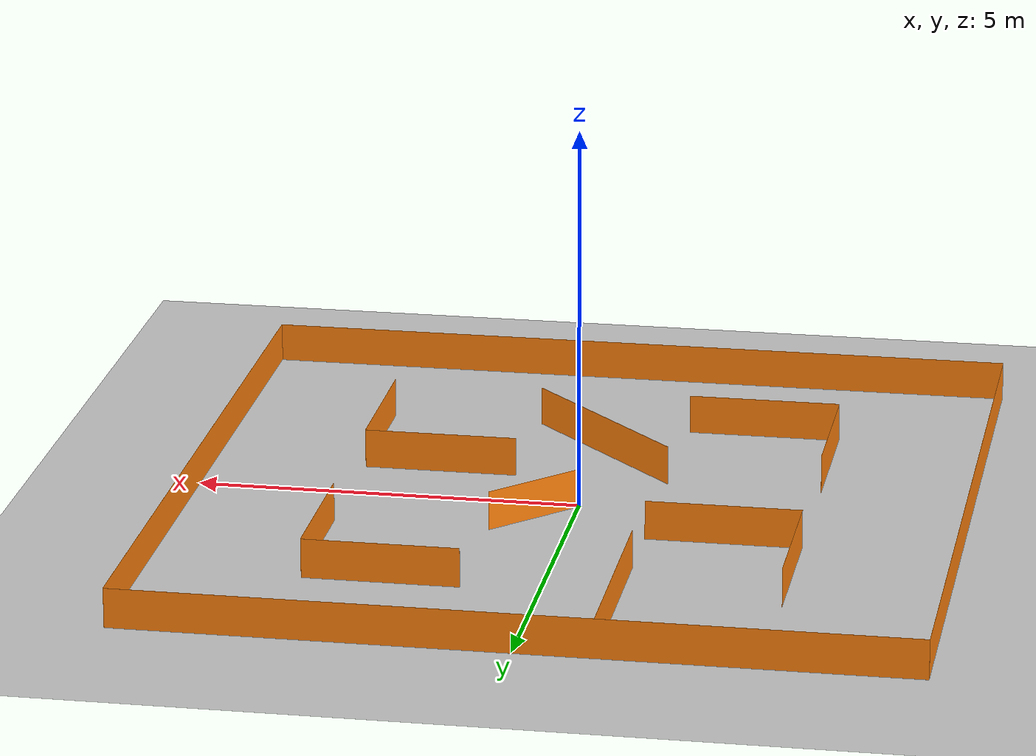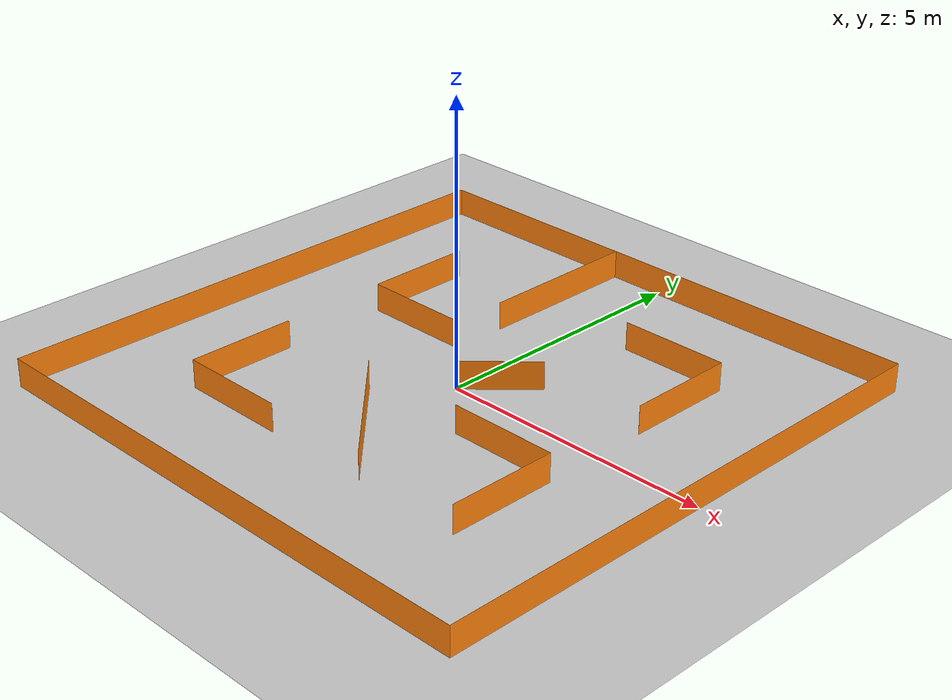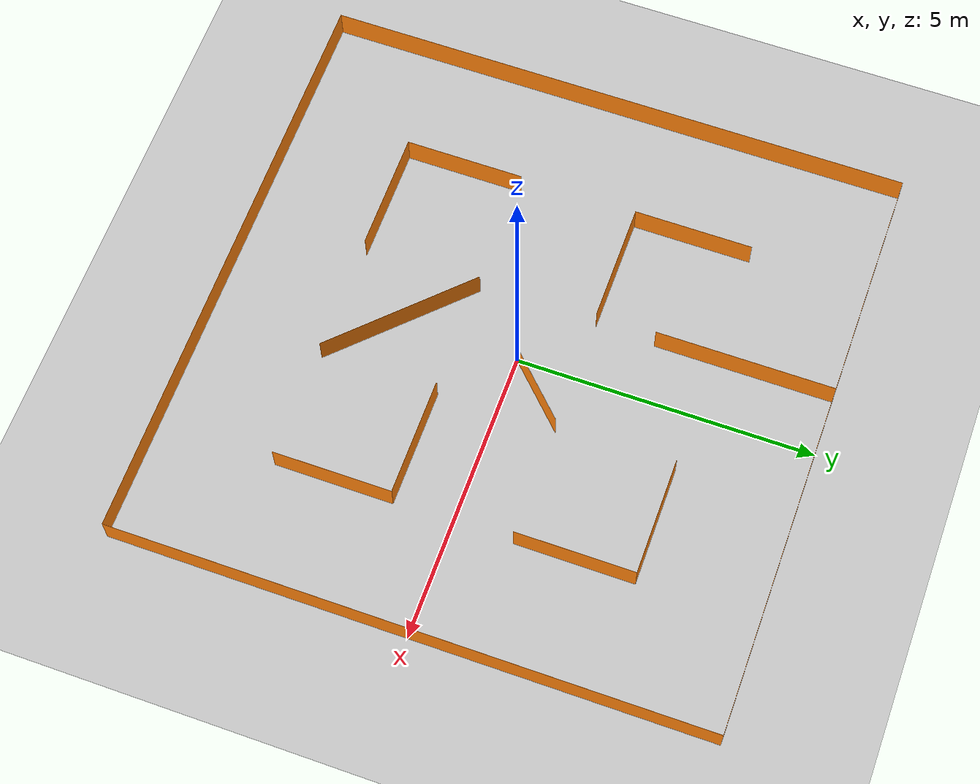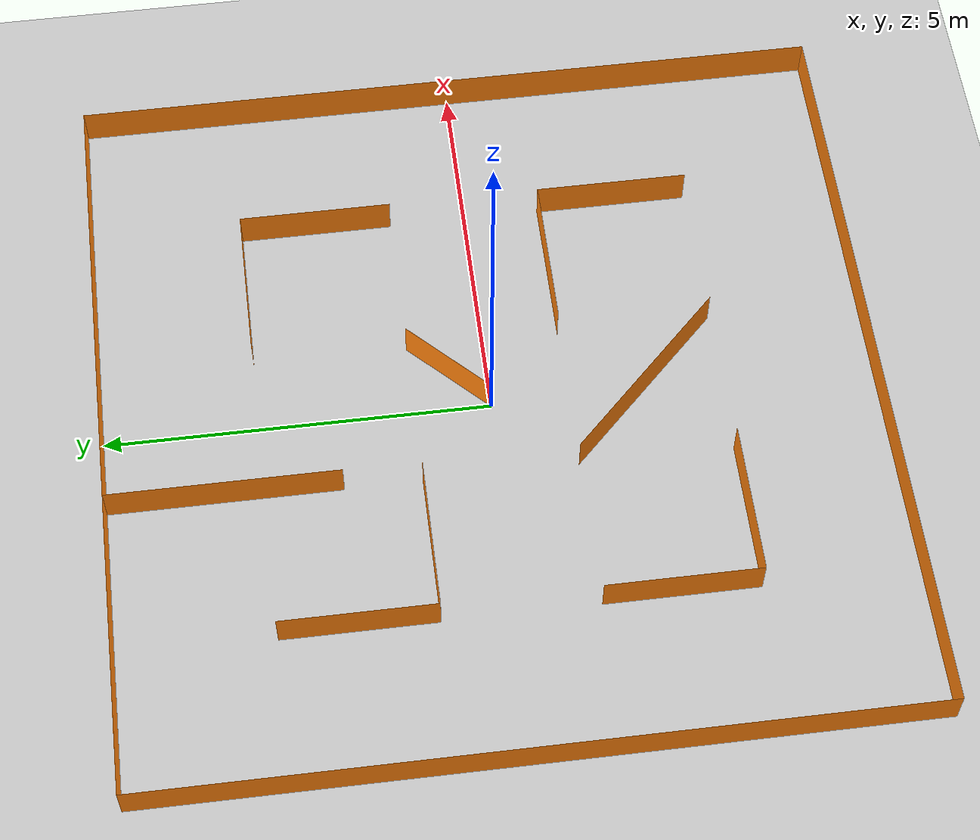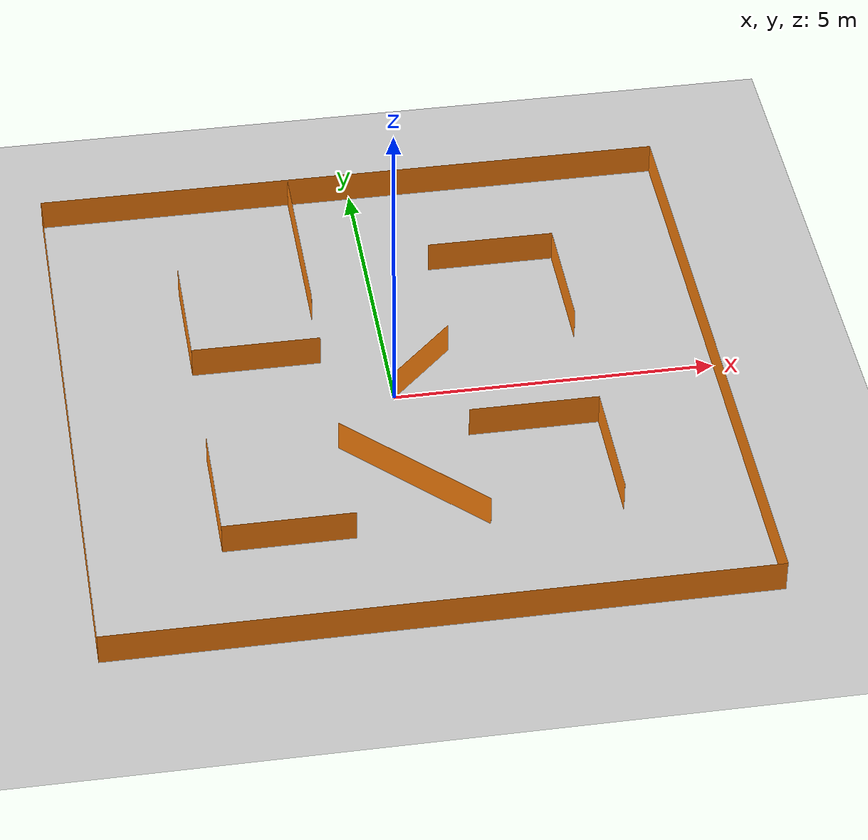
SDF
<sdf version='1.9'>
  <world name='default'>
    <include>
      <uri>https://fuel.gazebosim.org/1.0/OpenRobotics/models/Sun</uri>
    </include>

    <include>
      <uri>https://fuel.gazebosim.org/1.0/OpenRobotics/models/Ground Plane</uri>
    </include>

    <model name='wall_0'>
      <static>1</static>
      <link name='link'>
        <collision name='collision'>
          <geometry>
            <box>
              <size>10.0 0.001 1</size>
            </box>
          </geometry>
        </collision>
        <visual name='visual'>
          <geometry>
            <box>
              <size>10.0 0.001 1</size>
            </box>
          </geometry>
          <material>
            <ambient>1 0.5088 0.0468 1</ambient>
            <diffuse>1 0.5088 0.0468 1</diffuse>
            <specular>0.5 0.5 0.5 0.5</specular>
          </material>
        </visual>
      </link>
      <pose>0.0 5.0 0 0 0 3.14159265359</pose>
    </model>

    <model name='wall_1'>
      <static>1</static>
      <link name='link'>
        <collision name='collision'>
          <geometry>
            <box>
              <size>10.0 0.001 1</size>
            </box>
          </geometry>
        </collision>
        <visual name='visual'>
          <geometry>
            <box>
              <size>10.0 0.001 1</size>
            </box>
          </geometry>
          <material>
            <ambient>1 0.5088 0.0468 1</ambient>
            <diffuse>1 0.5088 0.0468 1</diffuse>
            <specular>0.5 0.5 0.5 0.5</specular>
          </material>
        </visual>
      </link>
      <pose>-5.0 0.0 0 0 0 -1.57079632679</pose>
    </model>

    <model name='wall_2'>
      <static>1</static>
      <link name='link'>
        <collision name='collision'>
          <geometry>
            <box>
              <size>10.0 0.001 1</size>
            </box>
          </geometry>
        </collision>
        <visual name='visual'>
          <geometry>
            <box>
              <size>10.0 0.001 1</size>
            </box>
          </geometry>
          <material>
            <ambient>1 0.5088 0.0468 1</ambient>
            <diffuse>1 0.5088 0.0468 1</diffuse>
            <specular>0.5 0.5 0.5 0.5</specular>
          </material>
        </visual>
      </link>
      <pose>0.0 -5.0 0 0 0 0.0</pose>
    </model>

    <model name='wall_3'>
      <static>1</static>
      <link name='link'>
        <collision name='collision'>
          <geometry>
            <box>
              <size>10.0 0.001 1</size>
            </box>
          </geometry>
        </collision>
        <visual name='visual'>
          <geometry>
            <box>
              <size>10.0 0.001 1</size>
            </box>
          </geometry>
          <material>
            <ambient>1 0.5088 0.0468 1</ambient>
            <diffuse>1 0.5088 0.0468 1</diffuse>
            <specular>0.5 0.5 0.5 0.5</specular>
          </material>
        </visual>
      </link>
      <pose>5.0 0.0 0 0 0 1.57079632679</pose>
    </model>

    <model name='wall_4'>
      <static>1</static>
      <link name='link'>
        <collision name='collision'>
          <geometry>
            <box>
              <size>2.0 0.001 1</size>
            </box>
          </geometry>
        </collision>
        <visual name='visual'>
          <geometry>
            <box>
              <size>2.0 0.001 1</size>
            </box>
          </geometry>
          <material>
            <ambient>1 0.5088 0.0468 1</ambient>
            <diffuse>1 0.5088 0.0468 1</diffuse>
            <specular>0.5 0.5 0.5 0.5</specular>
          </material>
        </visual>
      </link>
      <pose>-3.0 -2.0 0 0 0 1.57079632679</pose>
    </model>

    <model name='wall_5'>
      <static>1</static>
      <link name='link'>
        <collision name='collision'>
          <geometry>
            <box>
              <size>2.0 0.001 1</size>
            </box>
          </geometry>
        </collision>
        <visual name='visual'>
          <geometry>
            <box>
              <size>2.0 0.001 1</size>
            </box>
          </geometry>
          <material>
            <ambient>1 0.5088 0.0468 1</ambient>
            <diffuse>1 0.5088 0.0468 1</diffuse>
            <specular>0.5 0.5 0.5 0.5</specular>
          </material>
        </visual>
      </link>
      <pose>-2.0 -3.0 0 0 0 0.0</pose>
    </model>

    <model name='wall_6'>
      <static>1</static>
      <link name='link'>
        <collision name='collision'>
          <geometry>
            <box>
              <size>2.0 0.001 1</size>
            </box>
          </geometry>
        </collision>
        <visual name='visual'>
          <geometry>
            <box>
              <size>2.0 0.001 1</size>
            </box>
          </geometry>
          <material>
            <ambient>1 0.5088 0.0468 1</ambient>
            <diffuse>1 0.5088 0.0468 1</diffuse>
            <specular>0.5 0.5 0.5 0.5</specular>
          </material>
        </visual>
      </link>
      <pose>3.0 2.0 0 0 0 -1.57079632679</pose>
    </model>

    <model name='wall_7'>
      <static>1</static>
      <link name='link'>
        <collision name='collision'>
          <geometry>
            <box>
              <size>2.0 0.001 1</size>
            </box>
          </geometry>
        </collision>
        <visual name='visual'>
          <geometry>
            <box>
              <size>2.0 0.001 1</size>
            </box>
          </geometry>
          <material>
            <ambient>1 0.5088 0.0468 1</ambient>
            <diffuse>1 0.5088 0.0468 1</diffuse>
            <specular>0.5 0.5 0.5 0.5</specular>
          </material>
        </visual>
      </link>
      <pose>2.0 3.0 0 0 0 3.14159265359</pose>
    </model>

    <model name='wall_8'>
      <static>1</static>
      <link name='link'>
        <collision name='collision'>
          <geometry>
            <box>
              <size>2.0 0.001 1</size>
            </box>
          </geometry>
        </collision>
        <visual name='visual'>
          <geometry>
            <box>
              <size>2.0 0.001 1</size>
            </box>
          </geometry>
          <material>
            <ambient>1 0.5088 0.0468 1</ambient>
            <diffuse>1 0.5088 0.0468 1</diffuse>
            <specular>0.5 0.5 0.5 0.5</specular>
          </material>
        </visual>
      </link>
      <pose>2.0 -1.0 0 0 0 0.0</pose>
    </model>

    <model name='wall_9'>
      <static>1</static>
      <link name='link'>
        <collision name='collision'>
          <geometry>
            <box>
              <size>2.0 0.001 1</size>
            </box>
          </geometry>
        </collision>
        <visual name='visual'>
          <geometry>
            <box>
              <size>2.0 0.001 1</size>
            </box>
          </geometry>
          <material>
            <ambient>1 0.5088 0.0468 1</ambient>
            <diffuse>1 0.5088 0.0468 1</diffuse>
            <specular>0.5 0.5 0.5 0.5</specular>
          </material>
        </visual>
      </link>
      <pose>3.0 -2.0 0 0 0 -1.57079632679</pose>
    </model>

    <model name='wall_10'>
      <static>1</static>
      <link name='link'>
        <collision name='collision'>
          <geometry>
            <box>
              <size>2.0 0.001 1</size>
            </box>
          </geometry>
        </collision>
        <visual name='visual'>
          <geometry>
            <box>
              <size>2.0 0.001 1</size>
            </box>
          </geometry>
          <material>
            <ambient>1 0.5088 0.0468 1</ambient>
            <diffuse>1 0.5088 0.0468 1</diffuse>
            <specular>0.5 0.5 0.5 0.5</specular>
          </material>
        </visual>
      </link>
      <pose>-2.0 1.0 0 0 0 3.14159265359</pose>
    </model>

    <model name='wall_11'>
      <static>1</static>
      <link name='link'>
        <collision name='collision'>
          <geometry>
            <box>
              <size>2.0 0.001 1</size>
            </box>
          </geometry>
        </collision>
        <visual name='visual'>
          <geometry>
            <box>
              <size>2.0 0.001 1</size>
            </box>
          </geometry>
          <material>
            <ambient>1 0.5088 0.0468 1</ambient>
            <diffuse>1 0.5088 0.0468 1</diffuse>
            <specular>0.5 0.5 0.5 0.5</specular>
          </material>
        </visual>
      </link>
      <pose>-3.0 2.0 0 0 0 1.57079632679</pose>
    </model>

    <model name='wall_12'>
      <static>1</static>
      <link name='link'>
        <collision name='collision'>
          <geometry>
            <box>
              <size>2.82842712475 0.001 1</size>
            </box>
          </geometry>
        </collision>
        <visual name='visual'>
          <geometry>
            <box>
              <size>2.82842712475 0.001 1</size>
            </box>
          </geometry>
          <material>
            <ambient>1 0.5088 0.0468 1</ambient>
            <diffuse>1 0.5088 0.0468 1</diffuse>
            <specular>0.5 0.5 0.5 0.5</specular>
          </material>
        </visual>
      </link>
      <pose>0.0 -2.0 0 0 0 -0.785398163397</pose>
    </model>

    <model name='wall_13'>
      <static>1</static>
      <link name='link'>
        <collision name='collision'>
          <geometry>
            <box>
              <size>3.0 0.001 1</size>
            </box>
          </geometry>
        </collision>
        <visual name='visual'>
          <geometry>
            <box>
              <size>3.0 0.001 1</size>
            </box>
          </geometry>
          <material>
            <ambient>1 0.5088 0.0468 1</ambient>
            <diffuse>1 0.5088 0.0468 1</diffuse>
            <specular>0.5 0.5 0.5 0.5</specular>
          </material>
        </visual>
      </link>
      <pose>-1.0 3.5 0 0 0 -1.57079632679</pose>
    </model>

    <model name='wall_14'>
      <static>1</static>
      <link name='link'>
        <collision name='collision'>
          <geometry>
            <box>
              <size>1.41421356237 0.001 1</size>
            </box>
          </geometry>
        </collision>
        <visual name='visual'>
          <geometry>
            <box>
              <size>1.41421356237 0.001 1</size>
            </box>
          </geometry>
          <material>
            <ambient>1 0.5088 0.0468 1</ambient>
            <diffuse>1 0.5088 0.0468 1</diffuse>
            <specular>0.5 0.5 0.5 0.5</specular>
          </material>
        </visual>
      </link>
      <pose>0.5 0.5 0 0 0 0.785398163397</pose>
    </model>

    <gravity>0 0 -9.8</gravity>
    <magnetic_field>6e-06 2.3e-05 -4.2e-05</magnetic_field>
    <atmosphere type='adiabatic'/>
    <physics name='default_physics' type='ignored'>
      <max_step_size>0.001</max_step_size>
      <real_time_factor>1</real_time_factor>
    </physics>
    <scene>
      <ambient>0.4 0.4 0.4 1</ambient>
      <background>0.7 0.7 0.7 1</background>
      <shadows>1</shadows>
    </scene>
    <spherical_coordinates>
      <surface_model>EARTH_WGS84</surface_model>
      <latitude_deg>0</latitude_deg>
      <longitude_deg>0</longitude_deg>
      <elevation>0</elevation>
      <heading_deg>0</heading_deg>
    </spherical_coordinates>
    <gui fullscreen='0'>
      <camera name='user_camera'>
        <pose>5 -5 2 0 0.275643 2.35619</pose>
        <view_controller>orbit</view_controller>
        <projection_type>perspective</projection_type>
      </camera>
    </gui>
  </world>
</sdf>
